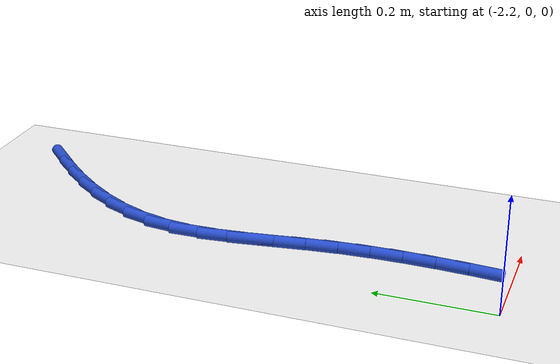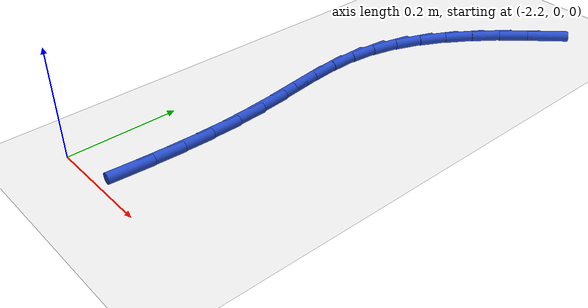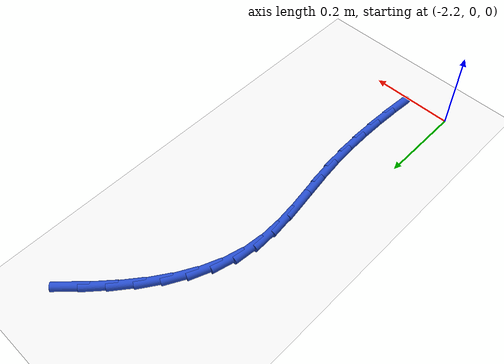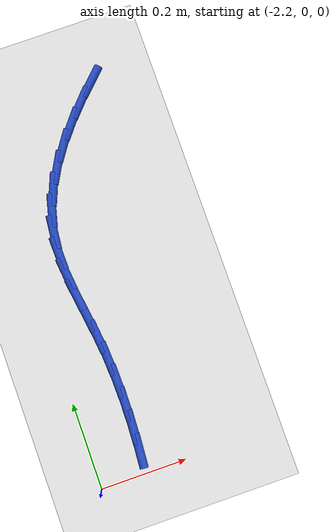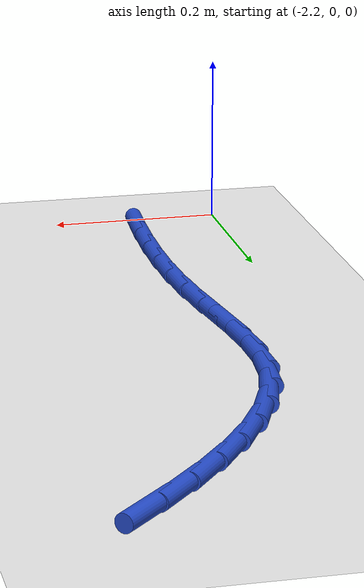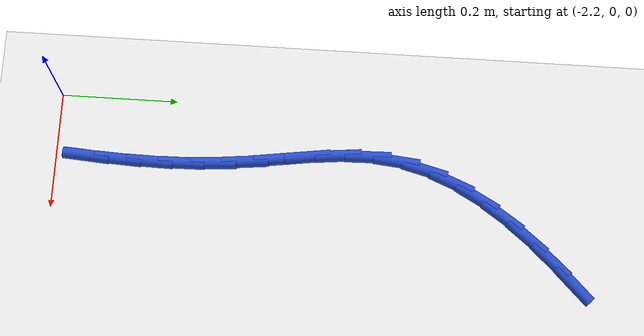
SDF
<sdf version="1.6">
 <world name="default">
  <model name="ground_plane">
   <static>1</static>
   <link name="link">
    <collision name="collision">
     <geometry><plane><normal>0 0 1</normal><size>100 100</size></plane></geometry>
     <surface><friction><ode><mu>100</mu><mu2>50</mu2></ode></friction></surface>
    </collision>
    <visual name="visual">
     <cast_shadows>0</cast_shadows>
     <geometry><plane><normal>0 0 1</normal><size>100 100</size></plane></geometry>
     <material>
      <script><uri>file://media/materials/scripts/gazebo.material</uri><name>Gazebo/WhiteGlow</name></script>
     </material>
    </visual>
   </link>
  </model>
  <model name="line">
   <link name="link_52">
    <pose>-1.9183492895013576 0.8903166033137899 0.01 0 1.57 0.7858901310401349</pose>
    <collision name="collision">
     <geometry><cylinder><radius>0.01</radius><length>0.08</length></cylinder></geometry>
    </collision>
    <visual name="visual">
     <material>
      <script><name>Gazebo/Blue</name><uri>file://media/materials/scripts/gazebo.material</uri></script>
     </material>
     <geometry><cylinder><radius>0.01</radius><length>0.08</length></cylinder></geometry>
    </visual>
   </link>
   <link name="link_53">
    <pose>-1.9577999129308645 0.8508271439146872 0.01 0 1.57 0.8346160034411199</pose>
    <collision name="collision">
     <geometry><cylinder><radius>0.01</radius><length>0.08</length></cylinder></geometry>
    </collision>
    <visual name="visual">
     <material>
      <script><name>Gazebo/Blue</name><uri>file://media/materials/scripts/gazebo.material</uri></script>
     </material>
     <geometry><cylinder><radius>0.01</radius><length>0.08</length></cylinder></geometry>
    </visual>
   </link>
   <link name="link_54">
    <pose>-1.994810142815219 0.8099819406680011 0.01 0 1.57 0.8967768908501994</pose>
    <collision name="collision">
     <geometry><cylinder><radius>0.01</radius><length>0.08</length></cylinder></geometry>
    </collision>
    <visual name="visual">
     <material>
      <script><name>Gazebo/Blue</name><uri>file://media/materials/scripts/gazebo.material</uri></script>
     </material>
     <geometry><cylinder><radius>0.01</radius><length>0.08</length></cylinder></geometry>
    </visual>
   </link>
   <link name="link_55">
    <pose>-2.0285437718274246 0.7677524793398948 0.01 0 1.57 0.974496028083345</pose>
    <collision name="collision">
     <geometry><cylinder><radius>0.01</radius><length>0.08</length></cylinder></geometry>
    </collision>
    <visual name="visual">
     <material>
      <script><name>Gazebo/Blue</name><uri>file://media/materials/scripts/gazebo.material</uri></script>
     </material>
     <geometry><cylinder><radius>0.01</radius><length>0.08</length></cylinder></geometry>
    </visual>
   </link>
   <link name="link_56">
    <pose>-2.058164592640482 0.7241102456965307 0.01 0 1.57 1.0700694714820989</pose>
    <collision name="collision">
     <geometry><cylinder><radius>0.01</radius><length>0.08</length></cylinder></geometry>
    </collision>
    <visual name="visual">
     <material>
      <script><name>Gazebo/Blue</name><uri>file://media/materials/scripts/gazebo.material</uri></script>
     </material>
     <geometry><cylinder><radius>0.01</radius><length>0.08</length></cylinder></geometry>
    </visual>
   </link>
   <link name="link_57">
    <pose>-2.0828363979273945 0.6790267255040703 0.01 0 1.57 1.1853876774774041</pose>
    <collision name="collision">
     <geometry><cylinder><radius>0.01</radius><length>0.08</length></cylinder></geometry>
    </collision>
    <visual name="visual">
     <material>
      <script><name>Gazebo/Blue</name><uri>file://media/materials/scripts/gazebo.material</uri></script>
     </material>
     <geometry><cylinder><radius>0.01</radius><length>0.08</length></cylinder></geometry>
    </visual>
   </link>
   <link name="link_58">
    <pose>-2.1017229803611612 0.6324734045286766 0.01 0 1.57 1.3208831673454786</pose>
    <collision name="collision">
     <geometry><cylinder><radius>0.01</radius><length>0.08</length></cylinder></geometry>
    </collision>
    <visual name="visual">
     <material>
      <script><name>Gazebo/Blue</name><uri>file://media/materials/scripts/gazebo.material</uri></script>
     </material>
     <geometry><cylinder><radius>0.01</radius><length>0.08</length></cylinder></geometry>
    </visual>
   </link>
   <link name="link_59">
    <pose>-2.1139881326147862 0.5844217685365118 0.01 0 1.57 1.4704897507283414</pose>
    <collision name="collision">
     <geometry><cylinder><radius>0.01</radius><length>0.08</length></cylinder></geometry>
    </collision>
    <visual name="visual">
     <material>
      <script><name>Gazebo/Blue</name><uri>file://media/materials/scripts/gazebo.material</uri></script>
     </material>
     <geometry><cylinder><radius>0.01</radius><length>0.08</length></cylinder></geometry>
    </visual>
   </link>
   <link name="link_60">
    <pose>-2.118976255375132 0.5348598899255452 0.01 0 1.57 -1.5469745737501712</pose>
    <collision name="collision">
     <geometry><cylinder><radius>0.01</radius><length>0.08</length></cylinder></geometry>
    </collision>
    <visual name="visual">
     <material>
      <script><name>Gazebo/Blue</name><uri>file://media/materials/scripts/gazebo.material</uri></script>
     </material>
     <geometry><cylinder><radius>0.01</radius><length>0.08</length></cylinder></geometry>
    </visual>
   </link>
   <link name="link_61">
    <pose>-2.1177629015582813 0.4839348262019541 0.01 0 1.57 -1.4678885311835486</pose>
    <collision name="collision">
     <geometry><cylinder><radius>0.01</radius><length>0.08</length></cylinder></geometry>
    </collision>
    <visual name="visual">
     <material>
      <script><name>Gazebo/Blue</name><uri>file://media/materials/scripts/gazebo.material</uri></script>
     </material>
     <geometry><cylinder><radius>0.01</radius><length>0.08</length></cylinder></geometry>
    </visual>
   </link>
   <link name="link_62">
    <pose>-2.1123872845141194 0.43188213526821945 0.01 0 1.57 -1.4302901974698563</pose>
    <collision name="collision">
     <geometry><cylinder><radius>0.01</radius><length>0.08</length></cylinder></geometry>
    </collision>
    <visual name="visual">
     <material>
      <script><name>Gazebo/Blue</name><uri>file://media/materials/scripts/gazebo.material</uri></script>
     </material>
     <geometry><cylinder><radius>0.01</radius><length>0.08</length></cylinder></geometry>
    </visual>
   </link>
   <link name="link_63">
    <pose>-2.104899012588457 0.37893832967975283 0.01 0 1.57 -1.4308305498377138</pose>
    <collision name="collision">
     <geometry><cylinder><radius>0.01</radius><length>0.08</length></cylinder></geometry>
    </collision>
    <visual name="visual">
     <material>
      <script><name>Gazebo/Blue</name><uri>file://media/materials/scripts/gazebo.material</uri></script>
     </material>
     <geometry><cylinder><radius>0.01</radius><length>0.08</length></cylinder></geometry>
    </visual>
   </link>
   <link name="link_64">
    <pose>-2.097347694127105 0.32533992199196765 0.01 0 1.57 -1.4667395222645625</pose>
    <collision name="collision">
     <geometry><cylinder><radius>0.01</radius><length>0.08</length></cylinder></geometry>
    </collision>
    <visual name="visual">
     <material>
      <script><name>Gazebo/Blue</name><uri>file://media/materials/scripts/gazebo.material</uri></script>
     </material>
     <geometry><cylinder><radius>0.01</radius><length>0.08</length></cylinder></geometry>
    </visual>
   </link>
   <link name="link_65">
    <pose>-2.0917059792958397 0.2713181052111751 0.01 0 1.57 -1.5151887445399628</pose>
    <collision name="collision">
     <geometry><cylinder><radius>0.01</radius><length>0.08</length></cylinder></geometry>
    </collision>
    <visual name="visual">
     <material>
      <script><name>Gazebo/Blue</name><uri>file://media/materials/scripts/gazebo.material</uri></script>
     </material>
     <geometry><cylinder><radius>0.01</radius><length>0.08</length></cylinder></geometry>
    </visual>
   </link>
   <link name="link_66">
    <pose>-2.0886832962806308 0.21701675516253743 0.01 0 1.57 -1.5574569964108615</pose>
    <collision name="collision">
     <geometry><cylinder><radius>0.01</radius><length>0.08</length></cylinder></geometry>
    </collision>
    <visual name="visual">
     <material>
      <script><name>Gazebo/Blue</name><uri>file://media/materials/scripts/gazebo.material</uri></script>
     </material>
     <geometry><cylinder><radius>0.01</radius><length>0.08</length></cylinder></geometry>
    </visual>
   </link>
   <link name="link_67">
    <pose>-2.0879561475147144 0.16250834916287552 0.01 0 1.57 1.5485733796666912</pose>
    <collision name="collision">
     <geometry><cylinder><radius>0.01</radius><length>0.08</length></cylinder></geometry>
    </collision>
    <visual name="visual">
     <material>
      <script><name>Gazebo/Blue</name><uri>file://media/materials/scripts/gazebo.material</uri></script>
     </material>
     <geometry><cylinder><radius>0.01</radius><length>0.08</length></cylinder></geometry>
    </visual>
   </link>
   <link name="link_68">
    <pose>-2.0891707221871845 0.10786326919891359 0.01 0 1.57 1.519617933913791</pose>
    <collision name="collision">
     <geometry><cylinder><radius>0.01</radius><length>0.08</length></cylinder></geometry>
    </collision>
    <visual name="visual">
     <material>
      <script><name>Gazebo/Blue</name><uri>file://media/materials/scripts/gazebo.material</uri></script>
     </material>
     <geometry><cylinder><radius>0.01</radius><length>0.08</length></cylinder></geometry>
    </visual>
   </link>
   <link name="link_69">
    <pose>-2.0919732094871315 0.05315189725737806 0.01 0 1.57 1.4971445678776278</pose>
    <collision name="collision">
     <geometry><cylinder><radius>0.01</radius><length>0.08</length></cylinder></geometry>
    </collision>
    <visual name="visual">
     <material>
      <script><name>Gazebo/Blue</name><uri>file://media/materials/scripts/gazebo.material</uri></script>
     </material>
     <geometry><cylinder><radius>0.01</radius><length>0.08</length></cylinder></geometry>
    </visual>
   </link>
  </model>
 </world>
</sdf>
